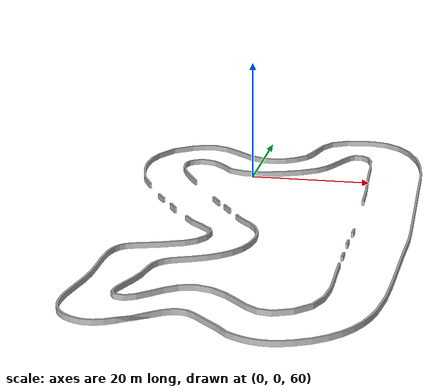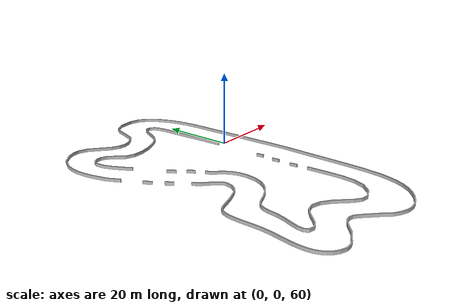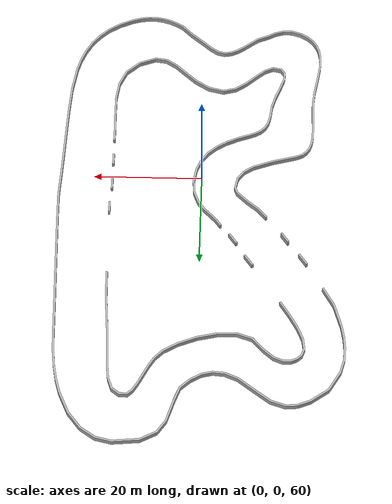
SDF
<sdf version='1.6'>
    <model name='EVGPTrack1'>
        <link name='inner_boundary'>
            <visual name='visual'>
                <geometry>
                    <mesh>
                        <uri>model://EVGPTrack1/roboracing_evgp_raceTrack_styled3_simple.dae</uri>
                        <scale>1 1 2</scale>
                    </mesh>
                </geometry>
                <material>
                    <ambient>0.7 0.7 0.7 1</ambient>
                    <diffuse>0.7 0.7 0.7 1</diffuse>
                </material>
            </visual>
            <collision name='collision'>
                <geometry>
                    <mesh>
                        <uri>model://EVGPTrack1/roboracing_evgp_raceTrack_styled3_simple.dae</uri>
                        <scale>1 1 2</scale>
                    </mesh>
                </geometry>
            </collision>
        </link>

        <link name='outer_boundary'>
            <visual name='visual'>
                <geometry>
                    <mesh>
                        <uri>model://EVGPTrack1/roboracing_evgp_raceTrack_styled3_simple_outer.dae</uri>
                        <scale>1 1 2</scale>
                    </mesh>
                </geometry>
                <material>
                    <ambient>0.7 0.7 0.7 1</ambient>
                    <diffuse>0.7 0.7 0.7 1</diffuse>
                </material>
            </visual>
            <collision name='collision'>
                <geometry>
                    <mesh>
                        <uri>model://EVGPTrack1/roboracing_evgp_raceTrack_styled3_simple_outer.dae</uri>
                        <scale>1 1 2</scale>
                    </mesh>
                </geometry>
            </collision>
        </link>

        <static>true</static>
        <allow_auto_disable>0</allow_auto_disable>
    </model>
</sdf>
